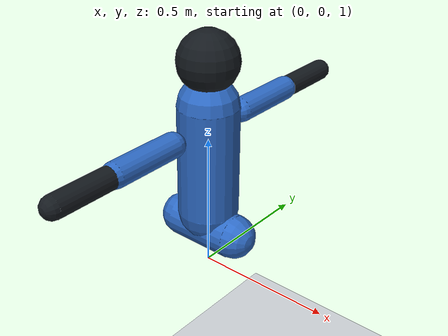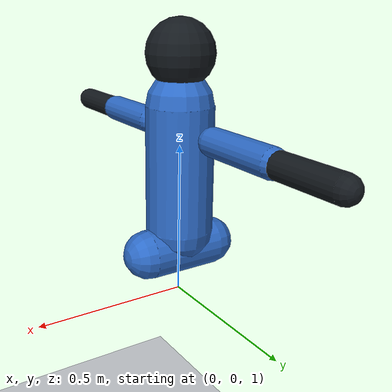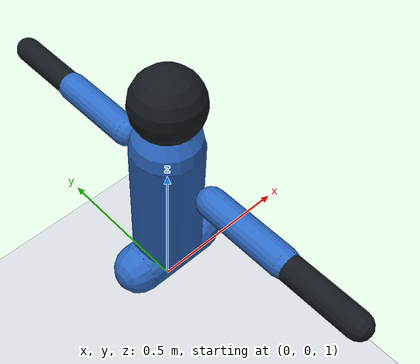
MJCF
<mujoco model="starter_humanoid">
  <compiler angle="radian" inertiafromgeom="true" autolimits="true"/>
  <option timestep="0.01" gravity="0 0 -9.81" integrator="RK4"/>

  <default>
    <joint damping="1.0" armature="0.02" limited="true"/>
    <geom condim="3" contype="1" conaffinity="1" density="650" friction="1.0 0.1 0.1"/>
    <motor ctrllimited="true" ctrlrange="-1 1"/>
  </default>

  <asset>
    <material name="body_blue" rgba="0.18 0.42 0.78 1"/>
    <material name="joint_dark" rgba="0.08 0.10 0.12 1"/>
    <material name="floor_mat" rgba="0.82 0.84 0.86 1"/>
  </asset>

  <worldbody>
    <light name="key_light" pos="0 -3 4" dir="0 1 -1" diffuse="0.8 0.8 0.8"/>
    <geom name="floor" type="plane" size="5 5 0.05" material="floor_mat"/>

    <body name="pelvis" pos="0 0 1.15">
      <freejoint name="root"/>
      <geom name="pelvis_geom" type="capsule" fromto="-0.12 0 0 0.12 0 0" size="0.08" material="body_blue"/>

      <body name="torso_yaw" pos="0 0 0.12">
        <inertial pos="0 0 0" mass="0.02" diaginertia="0.0001 0.0001 0.0001"/>
        <joint name="abdomen_z" type="hinge" axis="0 0 1" range="-0.7 0.7"/>
        <body name="torso_pitch">
          <inertial pos="0 0 0" mass="0.02" diaginertia="0.0001 0.0001 0.0001"/>
          <joint name="abdomen_y" type="hinge" axis="0 1 0" range="-0.5 0.5"/>
          <body name="torso_roll">
            <joint name="abdomen_x" type="hinge" axis="1 0 0" range="-0.5 0.5"/>
            <geom name="torso_geom" type="capsule" fromto="0 0 -0.05 0 0 0.36" size="0.11" material="body_blue"/>
            <geom name="head_geom" type="sphere" pos="0 0 0.52" size="0.11" material="joint_dark"/>

            <body name="right_upper_arm_z" pos="0 -0.18 0.28">
              <inertial pos="0 0 0" mass="0.02" diaginertia="0.0001 0.0001 0.0001"/>
              <joint name="shoulder1_right" type="hinge" axis="0 0 1" range="-1.5 1.5"/>
              <body name="right_upper_arm_y">
                <joint name="shoulder2_right" type="hinge" axis="0 1 0" range="-1.5 1.5"/>
                <geom name="right_upper_arm_geom" type="capsule" fromto="0 0 0 0 -0.26 0" size="0.045" material="body_blue"/>
                <body name="right_forearm" pos="0 -0.26 0">
                  <joint name="elbow_right" type="hinge" axis="0 1 0" range="-1.7 0.1"/>
                  <geom name="right_forearm_geom" type="capsule" fromto="0 0 0 0 -0.24 0" size="0.04" material="joint_dark"/>
                </body>
              </body>
            </body>

            <body name="left_upper_arm_z" pos="0 0.18 0.28">
              <inertial pos="0 0 0" mass="0.02" diaginertia="0.0001 0.0001 0.0001"/>
              <joint name="shoulder1_left" type="hinge" axis="0 0 1" range="-1.5 1.5"/>
              <body name="left_upper_arm_y">
                <joint name="shoulder2_left" type="hinge" axis="0 1 0" range="-1.5 1.5"/>
                <geom name="left_upper_arm_geom" type="capsule" fromto="0 0 0 0 0.26 0" size="0.045" material="body_blue"/>
                <body name="left_forearm" pos="0 0.26 0">
                  <joint name="elbow_left" type="hinge" axis="0 1 0" range="-1.7 0.1"/>
                  <geom name="left_forearm_geom" type="capsule" fromto="0 0 0 0 0.24 0" size="0.04" material="joint_dark"/>
                </body>
              </body>
            </body>
          </body>
        </body>
      </body>
    </body>
  </worldbody>

  <actuator>
    <motor name="abdomen_z_motor" joint="abdomen_z" gear="80"/>
    <motor name="abdomen_y_motor" joint="abdomen_y" gear="80"/>
    <motor name="abdomen_x_motor" joint="abdomen_x" gear="80"/>
    <motor name="shoulder1_right_motor" joint="shoulder1_right" gear="45"/>
    <motor name="shoulder2_right_motor" joint="shoulder2_right" gear="45"/>
    <motor name="elbow_right_motor" joint="elbow_right" gear="35"/>
    <motor name="shoulder1_left_motor" joint="shoulder1_left" gear="45"/>
    <motor name="shoulder2_left_motor" joint="shoulder2_left" gear="45"/>
    <motor name="elbow_left_motor" joint="elbow_left" gear="35"/>
  </actuator>
</mujoco>
